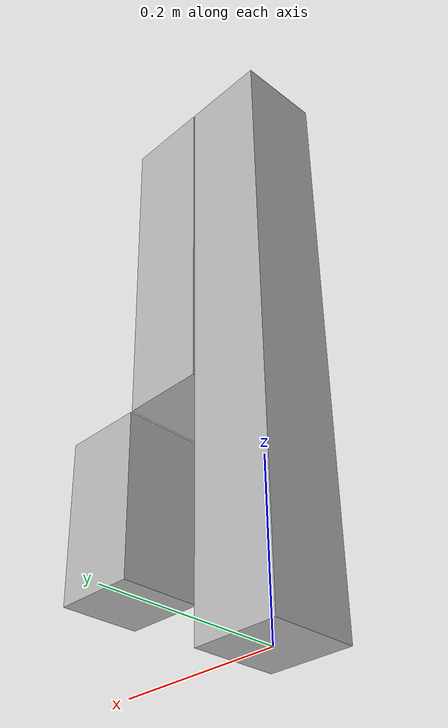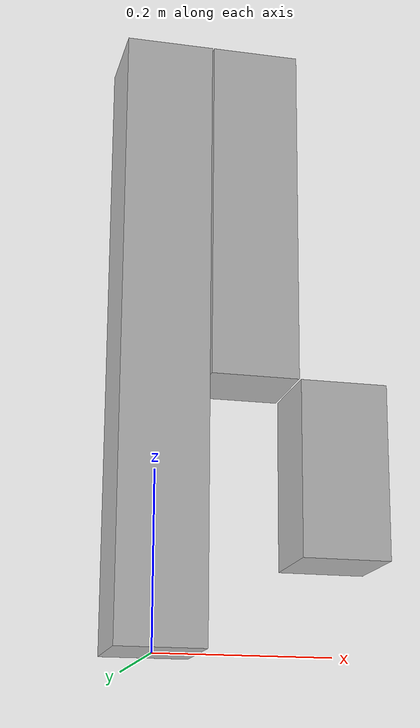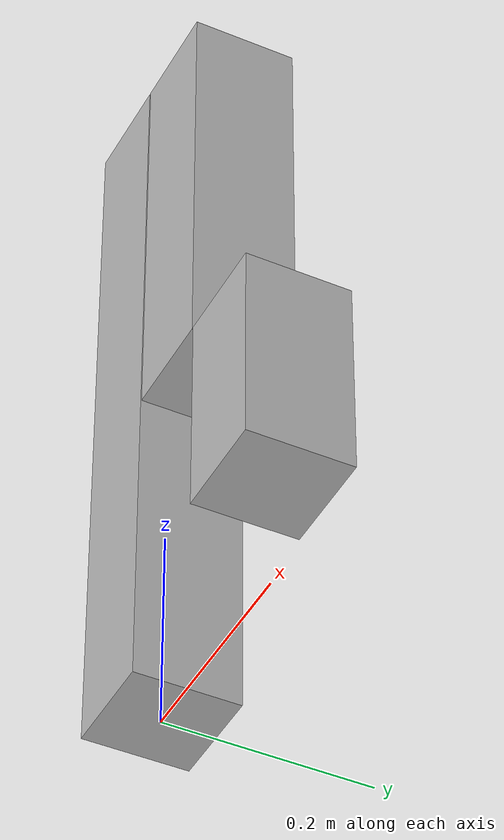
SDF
<?xml version="1.0"?>

<sdf version="1.6">
<model name="two_link_arm">
  <static>false</static>
  <!-- link0 -->
  <link name="link0">
    <pose>0 0 0.35 0 0 0</pose>

    <inertial>
      <mass>13.55</mass>
      <inertia>
        <ixx>0.294</ixx>
        <iyy>0.294</iyy>
        <izz>0.023</izz>
        <ixy>0</ixy>
        <ixz>0</ixz>
        <iyz>0</iyz>
      </inertia>
    </inertial>

    <collision name="collision">
      <geometry>
      <box>
      <size>0.1 0.1 0.7</size>
      </box>
      </geometry>
    </collision>

    <visual name="visual">
      <geometry>
      <box>
      <size>0.1 0.1 0.7</size>
      </box>
      </geometry>
    </visual>
  </link>

  <!-- link1 -->
  <link name="link1">
    <pose>0.102 0 0.5 0 0 0</pose>

    <inertial>
      <mass>10.84</mass>
      <inertia>
        <ixx>0.154</ixx>
        <iyy>0.154</iyy>
        <izz>0.018</izz>
        <ixy>0</ixy>
        <ixz>0</ixz>
        <iyz>0</iyz>
      </inertia>
    </inertial>

    <collision name="collision">
      <geometry>
      <box>
      <size>0.1 0.1 0.4</size>
      </box>
      </geometry>
    </collision>

    <visual name="visual">
      <geometry>
      <box>
      <size>0.1 0.1 0.4</size>
      </box>
      </geometry>
    </visual>
  </link>

  <!-- link2 -->
  <link name="link2">
    <pose>0.204 0 0.2 0 0 0</pose>

    <inertial>
      <mass>10.84</mass>
      <inertia>
        <ixx>0.154</ixx>
        <iyy>0.154</iyy>
        <izz>0.018</izz>
        <ixy>0</ixy>
        <ixz>0</ixz>
        <iyz>0</iyz>
      </inertia>
    </inertial>

    <collision name="collision">
      <geometry>
      <box>
      <size>0.1 0.1 0.2</size>
      </box>
      </geometry>
    </collision>

    <visual name="visual">
      <geometry>
      <box>
      <size>0.1 0.1 0.2</size>
      </box>
      </geometry>
    </visual>
  </link>

  <!-- fix to ground -->
  <joint name="fix-to-ground" type="fixed">
    <pose>0 0 -0.25 0 0 0</pose>
    <parent>world</parent>
    <child>link0</child>
  </joint>

  <!-- joint1 -->
  <joint type="revolute" name="joint1">
    <parent>link0</parent>
    <child>link1</child>
    <gearbox_ratio>1000</gearbox_ratio>

    <!-- Pose is defined with respect to child -->
    <pose>0.0 0 0.2 0 1.57 0</pose>

    <!-- The axis defines the joint's degree of freedom -->
    <axis>
      <!-- Revolve around the z-axis -->
      <initial_position>1.5</initial_position>
      <xyz>0 0 1</xyz>
      <dynamics>
        <damping>0.2</damping>
        <friction>0.2</friction>
      </dynamics>
      <!-- Limit refers to the range of motion of the joint -->
      <limit>
        <lower>-10002.5</lower>
        <upper>10002.5</upper>
      </limit>
    </axis>
  </joint>

  <!-- joint2 -->
  <joint type="revolute" name="joint2">
    <parent>link1</parent>
    <child>link2</child>
    <gearbox_ratio>1000</gearbox_ratio>

    <!-- Pose is defined with respect to child -->
    <pose>0.0 0 0.1 0 1.57 0</pose>

    <!-- The axis defines the joint's degree of freedom -->
    <axis>
      <!-- Revolve around the z-axis -->
      <initial_position>1.5</initial_position>
      <xyz>0 0 1</xyz>
      <dynamics>
        <damping>0.2</damping>
        <friction>0.2</friction>
      </dynamics>
      <!-- Limit refers to the range of motion of the joint -->
      <limit>
        <lower>-10002.5</lower>
        <upper>10002.5</upper>
      </limit>
    </axis>
  </joint>

</model>
</sdf>
